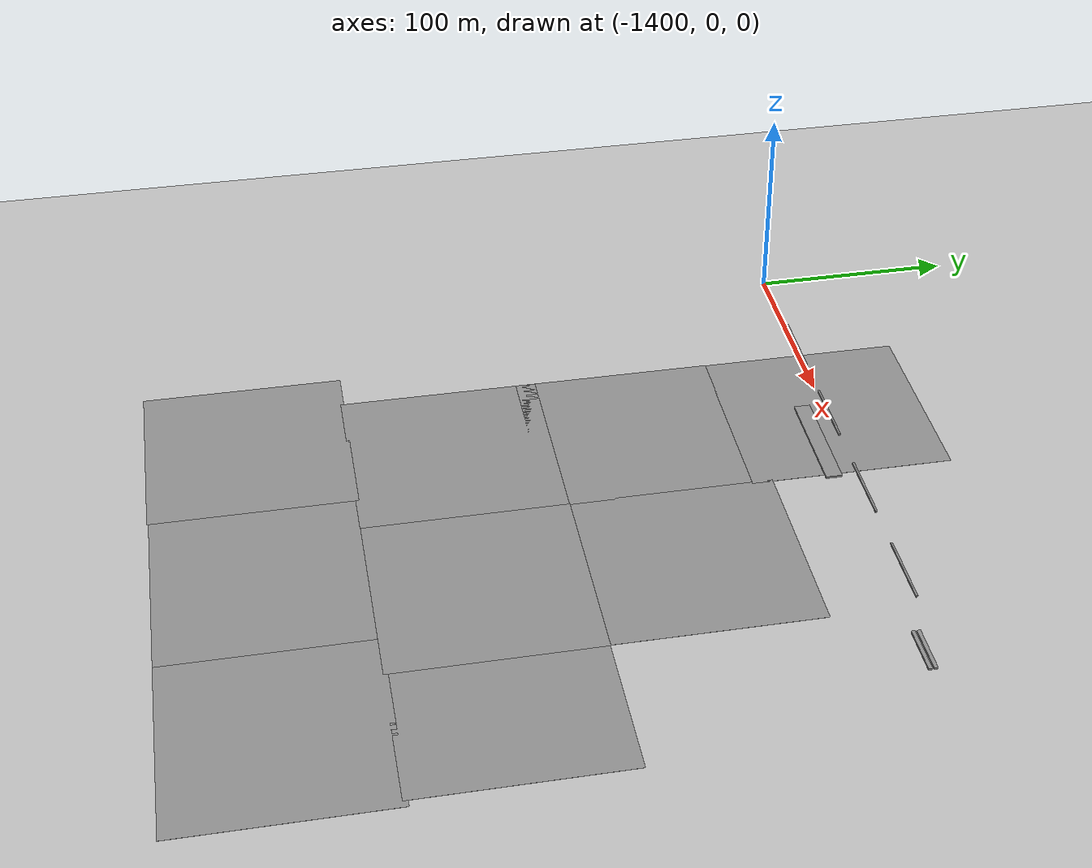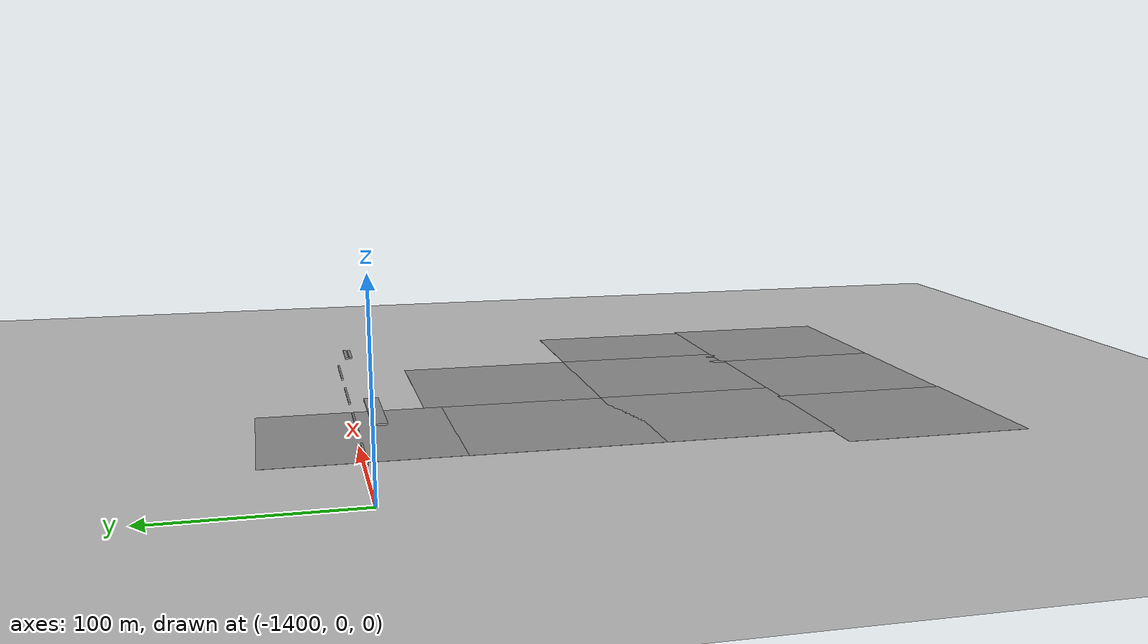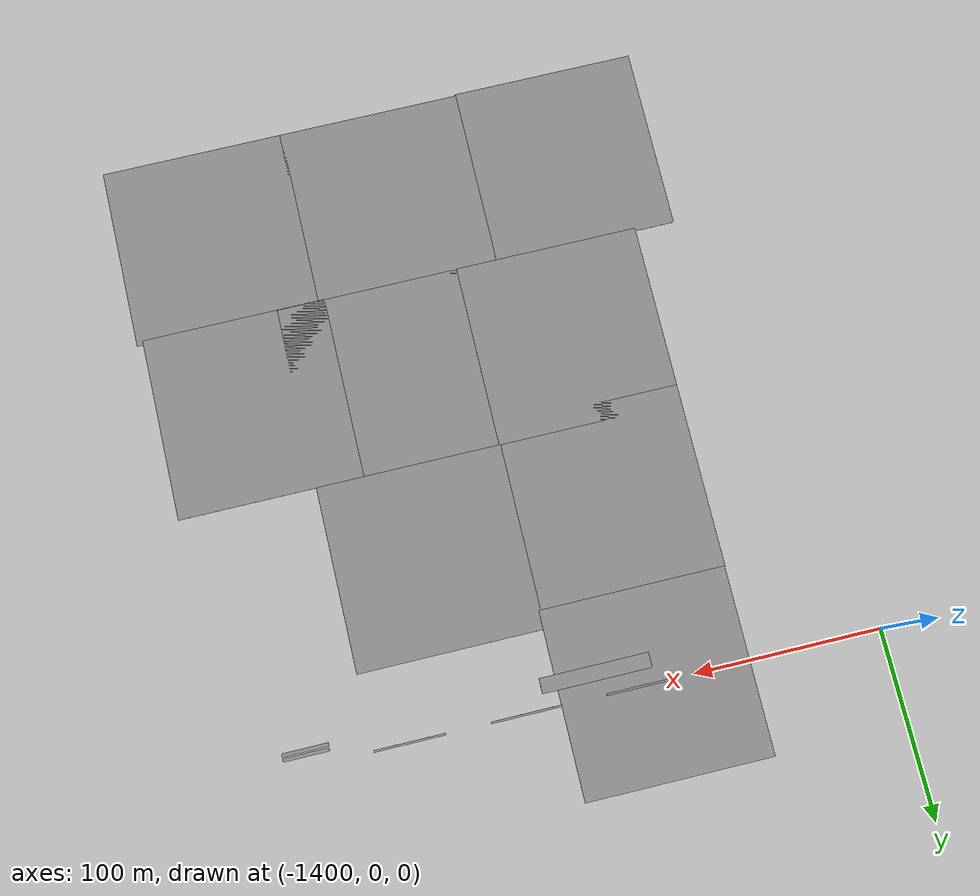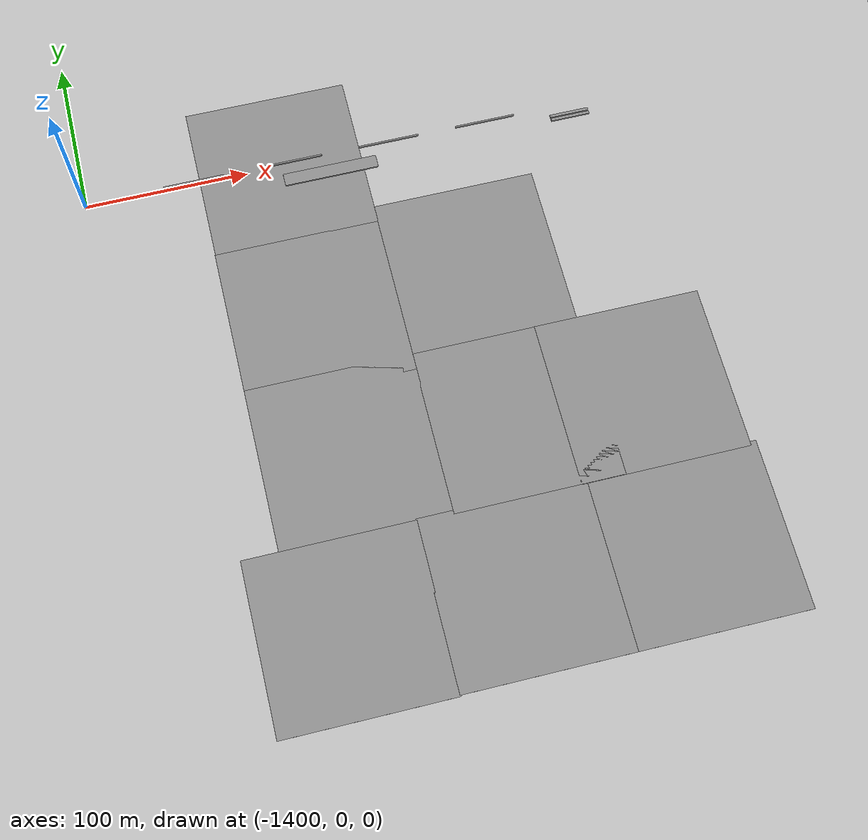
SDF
<sdf version="1.7">
 <world name="default">
  <model name="ground_plane">
   <static>1</static>
   <link name="link">
    <collision name="collision">
     <geometry><plane><normal>0 0 1</normal><size>100 100</size></plane></geometry>
     <surface><friction><ode><mu>100</mu><mu2>50</mu2></ode></friction></surface>
    </collision>
    <visual name="visual">
     <cast_shadows>0</cast_shadows>
     <geometry><plane><normal>0 0 1</normal><size>100 100</size></plane></geometry>
     <material>
      <script><uri>file://media/materials/scripts/gazebo.material</uri><name>Gazebo/Grey</name></script>
     </material>
    </visual>
   </link>
  </model>
  <model name="ground_plane_96">
   <static>1</static>
   <link name="link">
    <collision name="collision">
     <geometry><plane><normal>0 0 1</normal><size>100 100</size></plane></geometry>
     <surface>
      <contact><collide_bitmask>65535</collide_bitmask></contact>
      <friction><ode><mu>100</mu><mu2>50</mu2></ode></friction>
     </surface>
    </collision>
    <visual name="visual">
     <cast_shadows>0</cast_shadows>
     <geometry><plane><normal>0 0 1</normal><size>100 100</size></plane></geometry>
     <material>
      <script><uri>file://media/materials/scripts/gazebo.material</uri><name>Gazebo/Grey</name></script>
     </material>
    </visual>
   </link>
   <pose>-1106.64 -190.225 0 0 -0 0</pose>
  </model>
  <model name="ground_plane_105">
   <static>1</static>
   <link name="link">
    <collision name="collision">
     <geometry><plane><normal>0 0 1</normal><size>100 100</size></plane></geometry>
     <surface>
      <contact><collide_bitmask>65535</collide_bitmask></contact>
      <friction><ode><mu>100</mu><mu2>50</mu2></ode></friction>
     </surface>
    </collision>
    <visual name="visual">
     <cast_shadows>0</cast_shadows>
     <geometry><plane><normal>0 0 1</normal><size>100 100</size></plane></geometry>
     <material>
      <script><uri>file://media/materials/scripts/gazebo.material</uri><name>Gazebo/Grey</name></script>
     </material>
    </visual>
   </link>
   <pose>-1180.82 -90.3767 0 0 -0 0</pose>
  </model>
  <model name="ground_plane_118">
   <static>1</static>
   <link name="link">
    <collision name="collision">
     <geometry><plane><normal>0 0 1</normal><size>100 100</size></plane></geometry>
     <surface>
      <contact><collide_bitmask>65535</collide_bitmask></contact>
      <friction><ode><mu>100</mu><mu2>50</mu2></ode></friction>
     </surface>
    </collision>
    <visual name="visual">
     <cast_shadows>0</cast_shadows>
     <geometry><plane><normal>0 0 1</normal><size>100 100</size></plane></geometry>
     <material>
      <script><uri>file://media/materials/scripts/gazebo.material</uri><name>Gazebo/Grey</name></script>
     </material>
    </visual>
   </link>
   <pose>-1180.53 -189.975 0 0 -0 0</pose>
  </model>
  <model name="ground_plane_151">
   <static>1</static>
   <link name="link">
    <collision name="collision">
     <geometry><plane><normal>0 0 1</normal><size>100 100</size></plane></geometry>
     <surface>
      <contact><collide_bitmask>65535</collide_bitmask></contact>
      <friction><ode><mu>100</mu><mu2>50</mu2></ode></friction>
     </surface>
    </collision>
    <visual name="visual">
     <cast_shadows>0</cast_shadows>
     <geometry><plane><normal>0 0 1</normal><size>100 100</size></plane></geometry>
     <material>
      <script><uri>file://media/materials/scripts/gazebo.material</uri><name>Gazebo/Grey</name></script>
     </material>
    </visual>
   </link>
   <pose>-1279.71 -0.489341 0 0 -0 0</pose>
  </model>
  <model name="ground_plane_152">
   <static>1</static>
   <link name="link">
    <collision name="collision">
     <geometry><plane><normal>0 0 1</normal><size>100 100</size></plane></geometry>
     <surface>
      <contact><collide_bitmask>65535</collide_bitmask></contact>
      <friction><ode><mu>100</mu><mu2>50</mu2></ode></friction>
     </surface>
    </collision>
    <visual name="visual">
     <cast_shadows>0</cast_shadows>
     <geometry><plane><normal>0 0 1</normal><size>100 100</size></plane></geometry>
     <material>
      <script><uri>file://media/materials/scripts/gazebo.material</uri><name>Gazebo/Grey</name></script>
     </material>
    </visual>
   </link>
   <pose>-1279.99 -100.128 0 0 -0 0</pose>
  </model>
  <model name="ground_plane_153">
   <static>1</static>
   <link name="link">
    <collision name="collision">
     <geometry><plane><normal>0 0 1</normal><size>100 100</size></plane></geometry>
     <surface>
      <contact><collide_bitmask>65535</collide_bitmask></contact>
      <friction><ode><mu>100</mu><mu2>50</mu2></ode></friction>
     </surface>
    </collision>
    <visual name="visual">
     <cast_shadows>0</cast_shadows>
     <geometry><plane><normal>0 0 1</normal><size>100 100</size></plane></geometry>
     <material>
      <script><uri>file://media/materials/scripts/gazebo.material</uri><name>Gazebo/Grey</name></script>
     </material>
    </visual>
   </link>
   <pose>-1279.99 -190.161 0 0 -0 0</pose>
  </model>
  <model name="ground_plane_227">
   <static>1</static>
   <link name="link">
    <collision name="collision">
     <geometry><plane><normal>0 0 1</normal><size>100 100</size></plane></geometry>
     <surface>
      <contact><collide_bitmask>65535</collide_bitmask></contact>
      <friction><ode><mu>100</mu><mu2>50</mu2></ode></friction>
     </surface>
    </collision>
    <visual name="visual">
     <cast_shadows>0</cast_shadows>
     <geometry><plane><normal>0 0 1</normal><size>100 100</size></plane></geometry>
     <material>
      <script><uri>file://media/materials/scripts/gazebo.material</uri><name>Gazebo/Grey</name></script>
     </material>
    </visual>
   </link>
   <pose>-1103.2 -287.772 0 0 -0 0</pose>
  </model>
  <model name="ground_plane_228">
   <static>1</static>
   <link name="link">
    <collision name="collision">
     <geometry><plane><normal>0 0 1</normal><size>100 100</size></plane></geometry>
     <surface>
      <contact><collide_bitmask>65535</collide_bitmask></contact>
      <friction><ode><mu>100</mu><mu2>50</mu2></ode></friction>
     </surface>
    </collision>
    <visual name="visual">
     <cast_shadows>0</cast_shadows>
     <geometry><plane><normal>0 0 1</normal><size>100 100</size></plane></geometry>
     <material>
      <script><uri>file://media/materials/scripts/gazebo.material</uri><name>Gazebo/Grey</name></script>
     </material>
    </visual>
   </link>
   <pose>-1202.23 -287.772 0 0 -0 0</pose>
  </model>
  <model name="ground_plane_229">
   <static>1</static>
   <link name="link">
    <collision name="collision">
     <geometry><plane><normal>0 0 1</normal><size>100 100</size></plane></geometry>
     <surface>
      <contact><collide_bitmask>65535</collide_bitmask></contact>
      <friction><ode><mu>100</mu><mu2>50</mu2></ode></friction>
     </surface>
    </collision>
    <visual name="visual">
     <cast_shadows>0</cast_shadows>
     <geometry><plane><normal>0 0 1</normal><size>100 100</size></plane></geometry>
     <material>
      <script><uri>file://media/materials/scripts/gazebo.material</uri><name>Gazebo/Grey</name></script>
     </material>
    </visual>
   </link>
   <pose>-1301.43 -288.487 0 0 -0 0</pose>
  </model>
  <model name="runway_middle_strip_120ft_clone_0">
   <pose>-1333 2 5 0 -0 0</pose>
   <link name="Wall_4">
    <collision name="Wall_4_Collision">
     <geometry><box><size>37.426 1 1</size></box></geometry>
     <pose>0 0 0.05 0 -0 0</pose>
    </collision>
    <visual name="Wall_4_Visual">
     <pose>0 0 0.05 0 -0 0</pose>
     <geometry><box><size>37.426 1 1</size></box></geometry>
     <material>
      <script><uri>file://media/materials/scripts/gazebo.material</uri><name>Gazebo/Grey</name></script>
      <ambient>1 1 1 1</ambient>
     </material>
     <meta><layer>0</layer></meta>
    </visual>
    <pose>0 -2.48 0 0 -0 0</pose>
   </link>
   <static>1</static>
  </model>
  <model name="runway_middle_strip_120ft_clone_1">
   <pose>-1272.12 2 5 0 -0 0</pose>
   <link name="Wall_4">
    <collision name="Wall_4_Collision">
     <geometry><box><size>37.426 1 1</size></box></geometry>
     <pose>0 0 0.05 0 -0 0</pose>
    </collision>
    <visual name="Wall_4_Visual">
     <pose>0 0 0.05 0 -0 0</pose>
     <geometry><box><size>37.426 1 1</size></box></geometry>
     <material>
      <script><uri>file://media/materials/scripts/gazebo.material</uri><name>Gazebo/Grey</name></script>
      <ambient>1 1 1 1</ambient>
     </material>
     <meta><layer>0</layer></meta>
    </visual>
    <pose>0 -2.48 0 0 -0 0</pose>
   </link>
   <static>1</static>
  </model>
  <model name="runway_middle_strip_120ft_clone_2">
   <pose>-1211.16 2 5 0 -0 0</pose>
   <link name="Wall_4">
    <collision name="Wall_4_Collision">
     <geometry><box><size>37.426 1 1</size></box></geometry>
     <pose>0 0 0.05 0 -0 0</pose>
    </collision>
    <visual name="Wall_4_Visual">
     <pose>0 0 0.05 0 -0 0</pose>
     <geometry><box><size>37.426 1 1</size></box></geometry>
     <material>
      <script><uri>file://media/materials/scripts/gazebo.material</uri><name>Gazebo/Grey</name></script>
      <ambient>1 1 1 1</ambient>
     </material>
     <meta><layer>0</layer></meta>
    </visual>
    <pose>0 -2.48 0 0 -0 0</pose>
   </link>
   <static>1</static>
  </model>
  <model name="runway_middle_strip_120ft_clone_3">
   <pose>-1150.2 2 5 0 -0 0</pose>
   <link name="Wall_4">
    <collision name="Wall_4_Collision">
     <geometry><box><size>37.426 1 1</size></box></geometry>
     <pose>0 0 0.05 0 -0 0</pose>
    </collision>
    <visual name="Wall_4_Visual">
     <pose>0 0 0.05 0 -0 0</pose>
     <geometry><box><size>37.426 1 1</size></box></geometry>
     <material>
      <script><uri>file://media/materials/scripts/gazebo.material</uri><name>Gazebo/Grey</name></script>
      <ambient>1 1 1 1</ambient>
     </material>
     <meta><layer>0</layer></meta>
    </visual>
    <pose>0 -2.48 0 0 -0 0</pose>
   </link>
   <static>1</static>
  </model>
  <model name="runway_aiming_markings_clone">
   <pose>-1251 -12.5 5 0 -0 1.5708</pose>
   <link name="Wall_8">
    <collision name="Wall_8_Collision">
     <geometry><box><size>57.85 8 1</size></box></geometry>
     <pose>0 0 0.05 0 -0 0</pose>
    </collision>
    <visual name="Wall_8_Visual">
     <pose>0 0 0.05 0 -0 0</pose>
     <geometry><box><size>57.85 8 1</size></box></geometry>
     <material>
      <script><uri>file://media/materials/scripts/gazebo.material</uri><name>Gazebo/Grey</name></script>
      <ambient>1 1 1 1</ambient>
     </material>
     <meta><layer>0</layer></meta>
    </visual>
    <pose>0 -0.624998 0 0 -0 -1.5708</pose>
   </link>
   <static>1</static>
  </model>
  <model name="runway_touchdown_strip_22d5m_clone_2_clone_0">
   <pose>-1100 -8 5 0 -0 1.5708</pose>
   <link name="Wall_6">
    <collision name="Wall_6_Collision">
     <geometry><box><size>24.15 1.8 1</size></box></geometry>
     <pose>0 0 0.05 0 -0 0</pose>
    </collision>
    <visual name="Wall_6_Visual">
     <pose>0 0 0.05 0 -0 0</pose>
     <geometry><box><size>24.15 1.8 1</size></box></geometry>
     <material>
      <script><uri>file://media/materials/scripts/gazebo.material</uri><name>Gazebo/Grey</name></script>
      <ambient>1 1 1 1</ambient>
     </material>
     <meta><layer>0</layer></meta>
    </visual>
    <pose>1.16 -2.16 0 0 -0 -1.5708</pose>
   </link>
   <static>1</static>
  </model>
  <model name="runway_touchdown_strip_22d5m_clone_2_clone_1">
   <pose>-1100 -10.5 5 0 -0 1.5708</pose>
   <link name="Wall_6">
    <collision name="Wall_6_Collision">
     <geometry><box><size>24.15 1.8 1</size></box></geometry>
     <pose>0 0 0.05 0 -0 0</pose>
    </collision>
    <visual name="Wall_6_Visual">
     <pose>0 0 0.05 0 -0 0</pose>
     <geometry><box><size>24.15 1.8 1</size></box></geometry>
     <material>
      <script><uri>file://media/materials/scripts/gazebo.material</uri><name>Gazebo/Grey</name></script>
      <ambient>1 1 1 1</ambient>
     </material>
     <meta><layer>0</layer></meta>
    </visual>
    <pose>1.16 -2.16 0 0 -0 -1.5708</pose>
   </link>
   <static>1</static>
  </model>
 </world>
</sdf>
